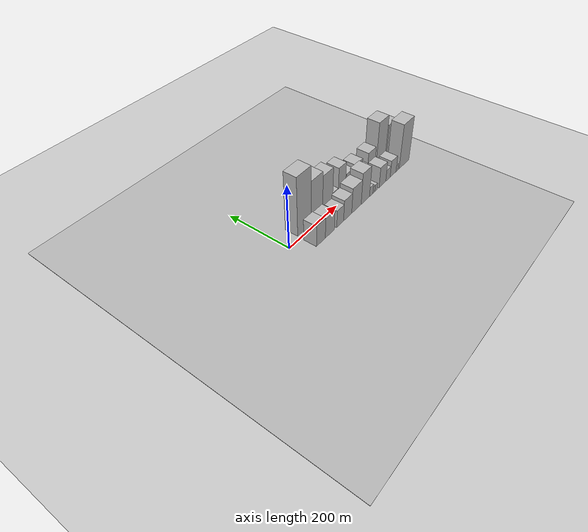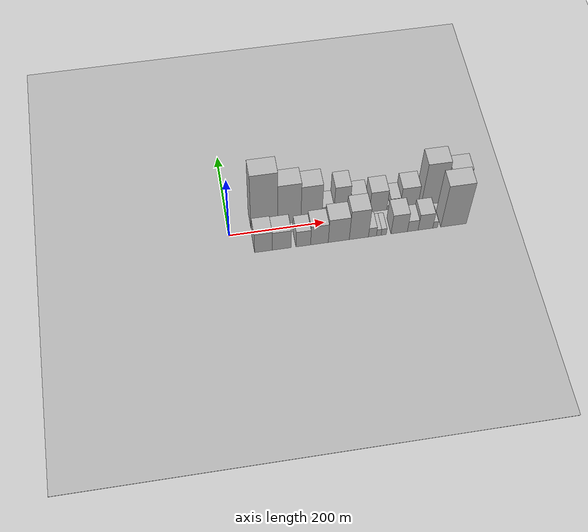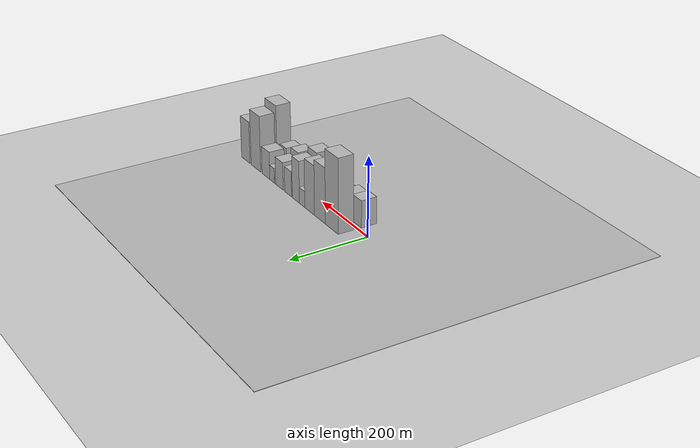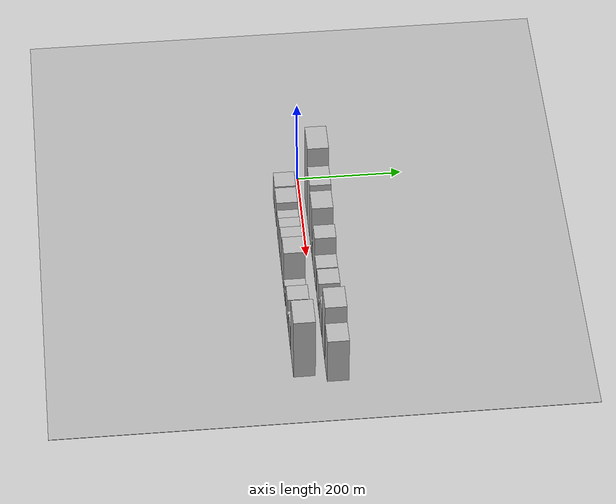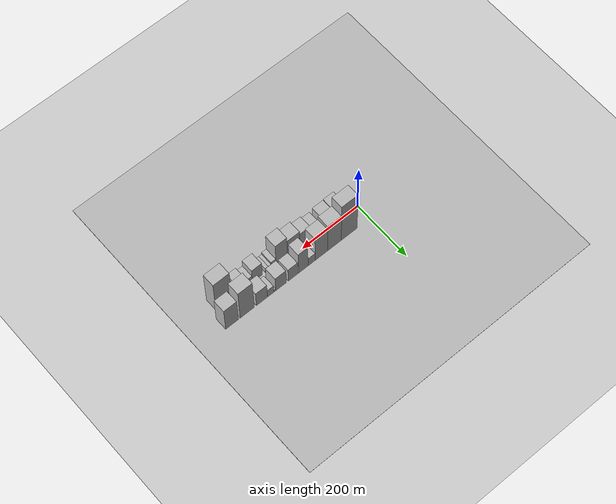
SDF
<?xml version="1.0" encoding="utf-8"?>

<sdf version="1.6">

   <world name="default">

      <gui fullscreen="0">

         <camera name="user_camera">

            <pose>-15 0 4.57585 0 0 0</pose>

            <view_controller>orbit</view_controller>

         </camera>

      </gui>

      <scene>

         <sky>

           <clouds>

             <speed>12</speed>

           </clouds>

         </sky>

         <ambient>0.4 0.4 0.4 1</ambient>

         <background>0.7 0.7 0.7 1</background>

         <shadows>1</shadows>

      </scene>

      <gravity>0 0 -9.8066</gravity>

      <magnetic_field>6e-06 2.3e-05 -4.2e-05</magnetic_field>

      <physics default="0" name="default_physics" type="ode">

         <ode>

            <solver>

               <type>quick</type>

               <iters>10</iters>

               <sor>1.0</sor>

               <use_dynamic_moi_rescaling>0</use_dynamic_moi_rescaling>

            </solver>

            <constraints>

               <cfm>0</cfm>

               <erp>0.2</erp>

               <contact_max_correcting_vel>100</contact_max_correcting_vel>

               <contact_surface_layer>0.001</contact_surface_layer>

            </constraints>

         </ode>

         <max_step_size>0.004</max_step_size>

         <real_time_factor>1</real_time_factor>

         <real_time_update_rate>250</real_time_update_rate>

      </physics>

      <light name="sun" type="directional">

         <cast_shadows>1</cast_shadows>

         <pose>0 0 10 0 0 0</pose>

         <diffuse>0.8 0.8 0.8 1</diffuse>

         <specular>0.2 0.2 0.2 1</specular>

         <attenuation>

            <range>1000</range>

            <constant>0.9</constant>

            <linear>0.01</linear>

            <quadratic>0.001</quadratic>

         </attenuation>

         <direction>-0.5 0.1 -0.9</direction>

      </light>

      <include>

         <name>ground_plane_1</name>

         <uri>model://HANNAS_ground_plane</uri>

         <pose>0 0 0  0 0 0</pose>

      </include>

      <include>

         <name>ground_plane_2</name>

         <uri>model://HANNAS_ground_plane</uri>

         <pose>100 0 0  0 0 0</pose>

      </include>

      <model name="building_1">

         <static>1</static>

         <pose frame="">74.5581 30.0000 0 0.000000 0.000000 1.570796</pose>

         <link name="link">

            <pose frame="">0 0 94.50 0 0 0</pose>

            <collision name="collision">

               <geometry>

                  <box>

                     <size>40.0000 57.1162 189.0000</size>

                  </box>

               </geometry>

               <max_contacts>10</max_contacts>

               <surface>

                  <contact>

                     <ode/>

                  </contact>

                  <bounce/>

                  <friction>

                     <torsional>

                        <ode/>

                     </torsional>

                     <ode/>

                  </friction>

               </surface>

            </collision>

            <visual name="visual">

               <cast_shadows>0</cast_shadows>

               <geometry>

                  <box>

                     <size>40.0000 57.1162 189.0000</size>

                  </box>

               </geometry>

               <material>

                  <script>

                     <uri>model://HANNAS_wall/materials/scripts</uri>

                     <uri>model://HANNAS_wall/materials/textures</uri>

                     <name>vrc/HANNAS_wall</name>

                  </script>

               </material>

            </visual>

            <self_collide>0</self_collide>

            <enable_wind>0</enable_wind>

            <kinematic>0</kinematic>

         </link>

      </model>

      <model name="building_2">

         <static>1</static>

         <pose frame="">127.4692 30.0000 0 0.000000 0.000000 1.570796</pose>

         <link name="link">

            <pose frame="">0 0 70.50 0 0 0</pose>

            <collision name="collision">

               <geometry>

                  <box>

                     <size>40.0000 48.7060 141.0000</size>

                  </box>

               </geometry>

               <max_contacts>10</max_contacts>

               <surface>

                  <contact>

                     <ode/>

                  </contact>

                  <bounce/>

                  <friction>

                     <torsional>

                        <ode/>

                     </torsional>

                     <ode/>

                  </friction>

               </surface>

            </collision>

            <visual name="visual">

               <cast_shadows>0</cast_shadows>

               <geometry>

                  <box>

                     <size>40.0000 48.7060 141.0000</size>

                  </box>

               </geometry>

               <material>

                  <script>

                     <uri>model://HANNAS_wall/materials/scripts</uri>

                     <uri>model://HANNAS_wall/materials/textures</uri>

                     <name>vrc/HANNAS_wall</name>

                  </script>

               </material>

            </visual>

            <self_collide>0</self_collide>

            <enable_wind>0</enable_wind>

            <kinematic>0</kinematic>

         </link>

      </model>

      <model name="building_3">

         <static>1</static>

         <pose frame="">174.1359 30.0000 0 0.000000 0.000000 1.570796</pose>

         <link name="link">

            <pose frame="">0 0 63.00 0 0 0</pose>

            <collision name="collision">

               <geometry>

                  <box>

                     <size>40.0000 44.6274 126.0000</size>

                  </box>

               </geometry>

               <max_contacts>10</max_contacts>

               <surface>

                  <contact>

                     <ode/>

                  </contact>

                  <bounce/>

                  <friction>

                     <torsional>

                        <ode/>

                     </torsional>

                     <ode/>

                  </friction>

               </surface>

            </collision>

            <visual name="visual">

               <cast_shadows>0</cast_shadows>

               <geometry>

                  <box>

                     <size>40.0000 44.6274 126.0000</size>

                  </box>

               </geometry>

               <material>

                  <script>

                     <uri>model://HANNAS_wall/materials/scripts</uri>

                     <uri>model://HANNAS_wall/materials/textures</uri>

                     <name>vrc/HANNAS_wall</name>

                  </script>

               </material>

            </visual>

            <self_collide>0</self_collide>

            <enable_wind>0</enable_wind>

            <kinematic>0</kinematic>

         </link>

      </model>

      <model name="building_4">

         <static>1</static>

         <pose frame="">208.9829 30.0000 0 0.000000 0.000000 1.570796</pose>

         <link name="link">

            <pose frame="">0 0 21.00 0 0 0</pose>

            <collision name="collision">

               <geometry>

                  <box>

                     <size>40.0000 25.0667 42.0000</size>

                  </box>

               </geometry>

               <max_contacts>10</max_contacts>

               <surface>

                  <contact>

                     <ode/>

                  </contact>

                  <bounce/>

                  <friction>

                     <torsional>

                        <ode/>

                     </torsional>

                     <ode/>

                  </friction>

               </surface>

            </collision>

            <visual name="visual">

               <cast_shadows>0</cast_shadows>

               <geometry>

                  <box>

                     <size>40.0000 25.0667 42.0000</size>

                  </box>

               </geometry>

               <material>

                  <script>

                     <uri>model://HANNAS_wall/materials/scripts</uri>

                     <uri>model://HANNAS_wall/materials/textures</uri>

                     <name>vrc/HANNAS_wall</name>

                  </script>

               </material>

            </visual>

            <self_collide>0</self_collide>

            <enable_wind>0</enable_wind>

            <kinematic>0</kinematic>

         </link>

      </model>

      <model name="building_5">

         <static>1</static>

         <pose frame="">238.2963 30.0000 0 0.000000 0.000000 1.570796</pose>

         <link name="link">

            <pose frame="">0 0 54.00 0 0 0</pose>

            <collision name="collision">

               <geometry>

                  <box>

                     <size>40.0000 33.5602 108.0000</size>

                  </box>

               </geometry>

               <max_contacts>10</max_contacts>

               <surface>

                  <contact>

                     <ode/>

                  </contact>

                  <bounce/>

                  <friction>

                     <torsional>

                        <ode/>

                     </torsional>

                     <ode/>

                  </friction>

               </surface>

            </collision>

            <visual name="visual">

               <cast_shadows>0</cast_shadows>

               <geometry>

                  <box>

                     <size>40.0000 33.5602 108.0000</size>

                  </box>

               </geometry>

               <material>

                  <script>

                     <uri>model://HANNAS_wall/materials/scripts</uri>

                     <uri>model://HANNAS_wall/materials/textures</uri>

                     <name>vrc/HANNAS_wall</name>

                  </script>

               </material>

            </visual>

            <self_collide>0</self_collide>

            <enable_wind>0</enable_wind>

            <kinematic>0</kinematic>

         </link>

      </model>

      <model name="building_6">

         <static>1</static>

         <pose frame="">274.7517 30.0000 0 0.000000 0.000000 1.570796</pose>

         <link name="link">

            <pose frame="">0 0 33.00 0 0 0</pose>

            <collision name="collision">

               <geometry>

                  <box>

                     <size>40.0000 33.3506 66.0000</size>

                  </box>

               </geometry>

               <max_contacts>10</max_contacts>

               <surface>

                  <contact>

                     <ode/>

                  </contact>

                  <bounce/>

                  <friction>

                     <torsional>

                        <ode/>

                     </torsional>

                     <ode/>

                  </friction>

               </surface>

            </collision>

            <visual name="visual">

               <cast_shadows>0</cast_shadows>

               <geometry>

                  <box>

                     <size>40.0000 33.3506 66.0000</size>

                  </box>

               </geometry>

               <material>

                  <script>

                     <uri>model://HANNAS_wall/materials/scripts</uri>

                     <uri>model://HANNAS_wall/materials/textures</uri>

                     <name>vrc/HANNAS_wall</name>

                  </script>

               </material>

            </visual>

            <self_collide>0</self_collide>

            <enable_wind>0</enable_wind>

            <kinematic>0</kinematic>

         </link>

      </model>

      <model name="building_7">

         <static>1</static>

         <pose frame="">317.0574 30.0000 0 0.000000 0.000000 1.570796</pose>

         <link name="link">

            <pose frame="">0 0 36.00 0 0 0</pose>

            <collision name="collision">

               <geometry>

                  <box>

                     <size>40.0000 37.2608 72.0000</size>

                  </box>

               </geometry>

               <max_contacts>10</max_contacts>

               <surface>

                  <contact>

                     <ode/>

                  </contact>

                  <bounce/>

                  <friction>

                     <torsional>

                        <ode/>

                     </torsional>

                     <ode/>

                  </friction>

               </surface>

            </collision>

            <visual name="visual">

               <cast_shadows>0</cast_shadows>

               <geometry>

                  <box>

                     <size>40.0000 37.2608 72.0000</size>

                  </box>

               </geometry>

               <material>

                  <script>

                     <uri>model://HANNAS_wall/materials/scripts</uri>

                     <uri>model://HANNAS_wall/materials/textures</uri>

                     <name>vrc/HANNAS_wall</name>

                  </script>

               </material>

            </visual>

            <self_collide>0</self_collide>

            <enable_wind>0</enable_wind>

            <kinematic>0</kinematic>

         </link>

      </model>

      <model name="building_8">

         <static>1</static>

         <pose frame="">338.9426 30.0000 0 0.000000 0.000000 1.570796</pose>

         <link name="link">

            <pose frame="">0 0 7.50 0 0 0</pose>

            <collision name="collision">

               <geometry>

                  <box>

                     <size>40.0000 6.5095 15.0000</size>

                  </box>

               </geometry>

               <max_contacts>10</max_contacts>

               <surface>

                  <contact>

                     <ode/>

                  </contact>

                  <bounce/>

                  <friction>

                     <torsional>

                        <ode/>

                     </torsional>

                     <ode/>

                  </friction>

               </surface>

            </collision>

            <visual name="visual">

               <cast_shadows>0</cast_shadows>

               <geometry>

                  <box>

                     <size>40.0000 6.5095 15.0000</size>

                  </box>

               </geometry>

               <material>

                  <script>

                     <uri>model://HANNAS_wall/materials/scripts</uri>

                     <uri>model://HANNAS_wall/materials/textures</uri>

                     <name>vrc/HANNAS_wall</name>

                  </script>

               </material>

            </visual>

            <self_collide>0</self_collide>

            <enable_wind>0</enable_wind>

            <kinematic>0</kinematic>

         </link>

      </model>

      <model name="building_9">

         <static>1</static>

         <pose frame="">353.2198 30.0000 0 0.000000 0.000000 1.570796</pose>

         <link name="link">

            <pose frame="">0 0 19.50 0 0 0</pose>

            <collision name="collision">

               <geometry>

                  <box>

                     <size>40.0000 22.0450 39.0000</size>

                  </box>

               </geometry>

               <max_contacts>10</max_contacts>

               <surface>

                  <contact>

                     <ode/>

                  </contact>

                  <bounce/>

                  <friction>

                     <torsional>

                        <ode/>

                     </torsional>

                     <ode/>

                  </friction>

               </surface>

            </collision>

            <visual name="visual">

               <cast_shadows>0</cast_shadows>

               <geometry>

                  <box>

                     <size>40.0000 22.0450 39.0000</size>

                  </box>

               </geometry>

               <material>

                  <script>

                     <uri>model://HANNAS_wall/materials/scripts</uri>

                     <uri>model://HANNAS_wall/materials/textures</uri>

                     <name>vrc/HANNAS_wall</name>

                  </script>

               </material>

            </visual>

            <self_collide>0</self_collide>

            <enable_wind>0</enable_wind>

            <kinematic>0</kinematic>

         </link>

      </model>

      <model name="building_10">

         <static>1</static>

         <pose frame="">383.6568 30.0000 0 0.000000 0.000000 1.570796</pose>

         <link name="link">

            <pose frame="">0 0 36.00 0 0 0</pose>

            <collision name="collision">

               <geometry>

                  <box>

                     <size>40.0000 38.8289 72.0000</size>

                  </box>

               </geometry>

               <max_contacts>10</max_contacts>

               <surface>

                  <contact>

                     <ode/>

                  </contact>

                  <bounce/>

                  <friction>

                     <torsional>

                        <ode/>

                     </torsional>

                     <ode/>

                  </friction>

               </surface>

            </collision>

            <visual name="visual">

               <cast_shadows>0</cast_shadows>

               <geometry>

                  <box>

                     <size>40.0000 38.8289 72.0000</size>

                  </box>

               </geometry>

               <material>

                  <script>

                     <uri>model://HANNAS_wall/materials/scripts</uri>

                     <uri>model://HANNAS_wall/materials/textures</uri>

                     <name>vrc/HANNAS_wall</name>

                  </script>

               </material>

            </visual>

            <self_collide>0</self_collide>

            <enable_wind>0</enable_wind>

            <kinematic>0</kinematic>

         </link>

      </model>

      <model name="building_11">

         <static>1</static>

         <pose frame="">434.4700 30.0000 0 0.000000 0.000000 1.570796</pose>

         <link name="link">

            <pose frame="">0 0 73.50 0 0 0</pose>

            <collision name="collision">

               <geometry>

                  <box>

                     <size>40.0000 48.7975 147.0000</size>

                  </box>

               </geometry>

               <max_contacts>10</max_contacts>

               <surface>

                  <contact>

                     <ode/>

                  </contact>

                  <bounce/>

                  <friction>

                     <torsional>

                        <ode/>

                     </torsional>

                     <ode/>

                  </friction>

               </surface>

            </collision>

            <visual name="visual">

               <cast_shadows>0</cast_shadows>

               <geometry>

                  <box>

                     <size>40.0000 48.7975 147.0000</size>

                  </box>

               </geometry>

               <material>

                  <script>

                     <uri>model://HANNAS_wall/materials/scripts</uri>

                     <uri>model://HANNAS_wall/materials/textures</uri>

                     <name>vrc/HANNAS_wall</name>

                  </script>

               </material>

            </visual>

            <self_collide>0</self_collide>

            <enable_wind>0</enable_wind>

            <kinematic>0</kinematic>

         </link>

      </model>

      <model name="building_12">

         <static>1</static>

         <pose frame="">486.7101 30.0000 0 0.000000 0.000000 1.570796</pose>

         <link name="link">

            <pose frame="">0 0 55.50 0 0 0</pose>

            <collision name="collision">

               <geometry>

                  <box>

                     <size>40.0000 43.6827 111.0000</size>

                  </box>

               </geometry>

               <max_contacts>10</max_contacts>

               <surface>

                  <contact>

                     <ode/>

                  </contact>

                  <bounce/>

                  <friction>

                     <torsional>

                        <ode/>

                     </torsional>

                     <ode/>

                  </friction>

               </surface>

            </collision>

            <visual name="visual">

               <cast_shadows>0</cast_shadows>

               <geometry>

                  <box>

                     <size>40.0000 43.6827 111.0000</size>

                  </box>

               </geometry>

               <material>

                  <script>

                     <uri>model://HANNAS_wall/materials/scripts</uri>

                     <uri>model://HANNAS_wall/materials/textures</uri>

                     <name>vrc/HANNAS_wall</name>

                  </script>

               </material>

            </visual>

            <self_collide>0</self_collide>

            <enable_wind>0</enable_wind>

            <kinematic>0</kinematic>

         </link>

      </model>

      <model name="building_13">

         <static>1</static>

         <pose frame="">63.6018 -30.0000 0 0.000000 0.000000 1.570796</pose>

         <link name="link">

            <pose frame="">0 0 34.50 0 0 0</pose>

            <collision name="collision">

               <geometry>

                  <box>

                     <size>40.0000 37.2036 69.0000</size>

                  </box>

               </geometry>

               <max_contacts>10</max_contacts>

               <surface>

                  <contact>

                     <ode/>

                  </contact>

                  <bounce/>

                  <friction>

                     <torsional>

                        <ode/>

                     </torsional>

                     <ode/>

                  </friction>

               </surface>

            </collision>

            <visual name="visual">

               <cast_shadows>0</cast_shadows>

               <geometry>

                  <box>

                     <size>40.0000 37.2036 69.0000</size>

                  </box>

               </geometry>

               <material>

                  <script>

                     <uri>model://HANNAS_wall/materials/scripts</uri>

                     <uri>model://HANNAS_wall/materials/textures</uri>

                     <name>vrc/HANNAS_wall</name>

                  </script>

               </material>

            </visual>

            <self_collide>0</self_collide>

            <enable_wind>0</enable_wind>

            <kinematic>0</kinematic>

         </link>

      </model>

      <model name="building_14">

         <static>1</static>

         <pose frame="">101.7707 -30.0000 0 0.000000 0.000000 1.570796</pose>

         <link name="link">

            <pose frame="">0 0 33.00 0 0 0</pose>

            <collision name="collision">

               <geometry>

                  <box>

                     <size>40.0000 39.1342 66.0000</size>

                  </box>

               </geometry>

               <max_contacts>10</max_contacts>

               <surface>

                  <contact>

                     <ode/>

                  </contact>

                  <bounce/>

                  <friction>

                     <torsional>

                        <ode/>

                     </torsional>

                     <ode/>

                  </friction>

               </surface>

            </collision>

            <visual name="visual">

               <cast_shadows>0</cast_shadows>

               <geometry>

                  <box>

                     <size>40.0000 39.1342 66.0000</size>

                  </box>

               </geometry>

               <material>

                  <script>

                     <uri>model://HANNAS_wall/materials/scripts</uri>

                     <uri>model://HANNAS_wall/materials/textures</uri>

                     <name>vrc/HANNAS_wall</name>

                  </script>

               </material>

            </visual>

            <self_collide>0</self_collide>

            <enable_wind>0</enable_wind>

            <kinematic>0</kinematic>

         </link>

      </model>

      <model name="building_15">

         <static>1</static>

         <pose frame="">146.7385 -30.0000 0 0.000000 0.000000 1.570796</pose>

         <link name="link">

            <pose frame="">0 0 28.50 0 0 0</pose>

            <collision name="collision">

               <geometry>

                  <box>

                     <size>40.0000 30.8015 57.0000</size>

                  </box>

               </geometry>

               <max_contacts>10</max_contacts>

               <surface>

                  <contact>

                     <ode/>

                  </contact>

                  <bounce/>

                  <friction>

                     <torsional>

                        <ode/>

                     </torsional>

                     <ode/>

                  </friction>

               </surface>

            </collision>

            <visual name="visual">

               <cast_shadows>0</cast_shadows>

               <geometry>

                  <box>

                     <size>40.0000 30.8015 57.0000</size>

                  </box>

               </geometry>

               <material>

                  <script>

                     <uri>model://HANNAS_wall/materials/scripts</uri>

                     <uri>model://HANNAS_wall/materials/textures</uri>

                     <name>vrc/HANNAS_wall</name>

                  </script>

               </material>

            </visual>

            <self_collide>0</self_collide>

            <enable_wind>0</enable_wind>

            <kinematic>0</kinematic>

         </link>

      </model>

      <model name="building_16">

         <static>1</static>

         <pose frame="">180.6436 -30.0000 0 0.000000 0.000000 1.570796</pose>

         <link name="link">

            <pose frame="">0 0 34.50 0 0 0</pose>

            <collision name="collision">

               <geometry>

                  <box>

                     <size>40.0000 37.0087 69.0000</size>

                  </box>

               </geometry>

               <max_contacts>10</max_contacts>

               <surface>

                  <contact>

                     <ode/>

                  </contact>

                  <bounce/>

                  <friction>

                     <torsional>

                        <ode/>

                     </torsional>

                     <ode/>

                  </friction>

               </surface>

            </collision>

            <visual name="visual">

               <cast_shadows>0</cast_shadows>

               <geometry>

                  <box>

                     <size>40.0000 37.0087 69.0000</size>

                  </box>

               </geometry>

               <material>

                  <script>

                     <uri>model://HANNAS_wall/materials/scripts</uri>

                     <uri>model://HANNAS_wall/materials/textures</uri>

                     <name>vrc/HANNAS_wall</name>

                  </script>

               </material>

            </visual>

            <self_collide>0</self_collide>

            <enable_wind>0</enable_wind>

            <kinematic>0</kinematic>

         </link>

      </model>

      <model name="building_17">

         <static>1</static>

         <pose frame="">221.3284 -30.0000 0 0.000000 0.000000 1.570796</pose>

         <link name="link">

            <pose frame="">0 0 42.00 0 0 0</pose>

            <collision name="collision">

               <geometry>

                  <box>

                     <size>40.0000 44.3609 84.0000</size>

                  </box>

               </geometry>

               <max_contacts>10</max_contacts>

               <surface>

                  <contact>

                     <ode/>

                  </contact>

                  <bounce/>

                  <friction>

                     <torsional>

                        <ode/>

                     </torsional>

                     <ode/>

                  </friction>

               </surface>

            </collision>

            <visual name="visual">

               <cast_shadows>0</cast_shadows>

               <geometry>

                  <box>

                     <size>40.0000 44.3609 84.0000</size>

                  </box>

               </geometry>

               <material>

                  <script>

                     <uri>model://HANNAS_wall/materials/scripts</uri>

                     <uri>model://HANNAS_wall/materials/textures</uri>

                     <name>vrc/HANNAS_wall</name>

                  </script>

               </material>

            </visual>

            <self_collide>0</self_collide>

            <enable_wind>0</enable_wind>

            <kinematic>0</kinematic>

         </link>

      </model>

      <model name="building_18">

         <static>1</static>

         <pose frame="">263.7964 -30.0000 0 0.000000 0.000000 1.570796</pose>

         <link name="link">

            <pose frame="">0 0 52.50 0 0 0</pose>

            <collision name="collision">

               <geometry>

                  <box>

                     <size>40.0000 40.5752 105.0000</size>

                  </box>

               </geometry>

               <max_contacts>10</max_contacts>

               <surface>

                  <contact>

                     <ode/>

                  </contact>

                  <bounce/>

                  <friction>

                     <torsional>

                        <ode/>

                     </torsional>

                     <ode/>

                  </friction>

               </surface>

            </collision>

            <visual name="visual">

               <cast_shadows>0</cast_shadows>

               <geometry>

                  <box>

                     <size>40.0000 40.5752 105.0000</size>

                  </box>

               </geometry>

               <material>

                  <script>

                     <uri>model://HANNAS_wall/materials/scripts</uri>

                     <uri>model://HANNAS_wall/materials/textures</uri>

                     <name>vrc/HANNAS_wall</name>

                  </script>

               </material>

            </visual>

            <self_collide>0</self_collide>

            <enable_wind>0</enable_wind>

            <kinematic>0</kinematic>

         </link>

      </model>

      <model name="building_19">

         <static>1</static>

         <pose frame="">292.5426 -30.0000 0 0.000000 0.000000 1.570796</pose>

         <link name="link">

            <pose frame="">0 0 16.50 0 0 0</pose>

            <collision name="collision">

               <geometry>

                  <box>

                     <size>40.0000 16.9172 33.0000</size>

                  </box>

               </geometry>

               <max_contacts>10</max_contacts>

               <surface>

                  <contact>

                     <ode/>

                  </contact>

                  <bounce/>

                  <friction>

                     <torsional>

                        <ode/>

                     </torsional>

                     <ode/>

                  </friction>

               </surface>

            </collision>

            <visual name="visual">

               <cast_shadows>0</cast_shadows>

               <geometry>

                  <box>

                     <size>40.0000 16.9172 33.0000</size>

                  </box>

               </geometry>

               <material>

                  <script>

                     <uri>model://HANNAS_wall/materials/scripts</uri>

                     <uri>model://HANNAS_wall/materials/textures</uri>

                     <name>vrc/HANNAS_wall</name>

                  </script>

               </material>

            </visual>

            <self_collide>0</self_collide>

            <enable_wind>0</enable_wind>

            <kinematic>0</kinematic>

         </link>

      </model>

      <model name="building_20">

         <static>1</static>

         <pose frame="">305.8839 -30.0000 0 0.000000 0.000000 1.570796</pose>

         <link name="link">

            <pose frame="">0 0 12.00 0 0 0</pose>

            <collision name="collision">

               <geometry>

                  <box>

                     <size>40.0000 9.7653 24.0000</size>

                  </box>

               </geometry>

               <max_contacts>10</max_contacts>

               <surface>

                  <contact>

                     <ode/>

                  </contact>

                  <bounce/>

                  <friction>

                     <torsional>

                        <ode/>

                     </torsional>

                     <ode/>

                  </friction>

               </surface>

            </collision>

            <visual name="visual">

               <cast_shadows>0</cast_shadows>

               <geometry>

                  <box>

                     <size>40.0000 9.7653 24.0000</size>

                  </box>

               </geometry>

               <material>

                  <script>

                     <uri>model://HANNAS_wall/materials/scripts</uri>

                     <uri>model://HANNAS_wall/materials/textures</uri>

                     <name>vrc/HANNAS_wall</name>

                  </script>

               </material>

            </visual>

            <self_collide>0</self_collide>

            <enable_wind>0</enable_wind>

            <kinematic>0</kinematic>

         </link>

      </model>

      <model name="building_21">

         <static>1</static>

         <pose frame="">316.3816 -30.0000 0 0.000000 0.000000 1.570796</pose>

         <link name="link">

            <pose frame="">0 0 12.00 0 0 0</pose>

            <collision name="collision">

               <geometry>

                  <box>

                     <size>40.0000 11.2301 24.0000</size>

                  </box>

               </geometry>

               <max_contacts>10</max_contacts>

               <surface>

                  <contact>

                     <ode/>

                  </contact>

                  <bounce/>

                  <friction>

                     <torsional>

                        <ode/>

                     </torsional>

                     <ode/>

                  </friction>

               </surface>

            </collision>

            <visual name="visual">

               <cast_shadows>0</cast_shadows>

               <geometry>

                  <box>

                     <size>40.0000 11.2301 24.0000</size>

                  </box>

               </geometry>

               <material>

                  <script>

                     <uri>model://HANNAS_wall/materials/scripts</uri>

                     <uri>model://HANNAS_wall/materials/textures</uri>

                     <name>vrc/HANNAS_wall</name>

                  </script>

               </material>

            </visual>

            <self_collide>0</self_collide>

            <enable_wind>0</enable_wind>

            <kinematic>0</kinematic>

         </link>

      </model>

      <model name="building_22">

         <static>1</static>

         <pose frame="">349.4318 -30.0000 0 0.000000 0.000000 1.570796</pose>

         <link name="link">

            <pose frame="">0 0 34.50 0 0 0</pose>

            <collision name="collision">

               <geometry>

                  <box>

                     <size>40.0000 34.8703 69.0000</size>

                  </box>

               </geometry>

               <max_contacts>10</max_contacts>

               <surface>

                  <contact>

                     <ode/>

                  </contact>

                  <bounce/>

                  <friction>

                     <torsional>

                        <ode/>

                     </torsional>

                     <ode/>

                  </friction>

               </surface>

            </collision>

            <visual name="visual">

               <cast_shadows>0</cast_shadows>

               <geometry>

                  <box>

                     <size>40.0000 34.8703 69.0000</size>

                  </box>

               </geometry>

               <material>

                  <script>

                     <uri>model://HANNAS_wall/materials/scripts</uri>

                     <uri>model://HANNAS_wall/materials/textures</uri>

                     <name>vrc/HANNAS_wall</name>

                  </script>

               </material>

            </visual>

            <self_collide>0</self_collide>

            <enable_wind>0</enable_wind>

            <kinematic>0</kinematic>

         </link>

      </model>

      <model name="building_23">

         <static>1</static>

         <pose frame="">378.2280 -30.0000 0 0.000000 0.000000 1.570796</pose>

         <link name="link">

            <pose frame="">0 0 19.50 0 0 0</pose>

            <collision name="collision">

               <geometry>

                  <box>

                     <size>40.0000 22.7221 39.0000</size>

                  </box>

               </geometry>

               <max_contacts>10</max_contacts>

               <surface>

                  <contact>

                     <ode/>

                  </contact>

                  <bounce/>

                  <friction>

                     <torsional>

                        <ode/>

                     </torsional>

                     <ode/>

                  </friction>

               </surface>

            </collision>

            <visual name="visual">

               <cast_shadows>0</cast_shadows>

               <geometry>

                  <box>

                     <size>40.0000 22.7221 39.0000</size>

                  </box>

               </geometry>

               <material>

                  <script>

                     <uri>model://HANNAS_wall/materials/scripts</uri>

                     <uri>model://HANNAS_wall/materials/textures</uri>

                     <name>vrc/HANNAS_wall</name>

                  </script>

               </material>

            </visual>

            <self_collide>0</self_collide>

            <enable_wind>0</enable_wind>

            <kinematic>0</kinematic>

         </link>

      </model>

      <model name="building_24">

         <static>1</static>

         <pose frame="">405.3217 -30.0000 0 0.000000 0.000000 1.570796</pose>

         <link name="link">

            <pose frame="">0 0 28.50 0 0 0</pose>

            <collision name="collision">

               <geometry>

                  <box>

                     <size>40.0000 31.4653 57.0000</size>

                  </box>

               </geometry>

               <max_contacts>10</max_contacts>

               <surface>

                  <contact>

                     <ode/>

                  </contact>

                  <bounce/>

                  <friction>

                     <torsional>

                        <ode/>

                     </torsional>

                     <ode/>

                  </friction>

               </surface>

            </collision>

            <visual name="visual">

               <cast_shadows>0</cast_shadows>

               <geometry>

                  <box>

                     <size>40.0000 31.4653 57.0000</size>

                  </box>

               </geometry>

               <material>

                  <script>

                     <uri>model://HANNAS_wall/materials/scripts</uri>

                     <uri>model://HANNAS_wall/materials/textures</uri>

                     <name>vrc/HANNAS_wall</name>

                  </script>

               </material>

            </visual>

            <self_collide>0</self_collide>

            <enable_wind>0</enable_wind>

            <kinematic>0</kinematic>

         </link>

      </model>

      <model name="building_25">

         <static>1</static>

         <pose frame="">426.1001 -30.0000 0 0.000000 0.000000 1.570796</pose>

         <link name="link">

            <pose frame="">0 0 12.00 0 0 0</pose>

            <collision name="collision">

               <geometry>

                  <box>

                     <size>40.0000 10.0915 24.0000</size>

                  </box>

               </geometry>

               <max_contacts>10</max_contacts>

               <surface>

                  <contact>

                     <ode/>

                  </contact>

                  <bounce/>

                  <friction>

                     <torsional>

                        <ode/>

                     </torsional>

                     <ode/>

                  </friction>

               </surface>

            </collision>

            <visual name="visual">

               <cast_shadows>0</cast_shadows>

               <geometry>

                  <box>

                     <size>40.0000 10.0915 24.0000</size>

                  </box>

               </geometry>

               <material>

                  <script>

                     <uri>model://HANNAS_wall/materials/scripts</uri>

                     <uri>model://HANNAS_wall/materials/textures</uri>

                     <name>vrc/HANNAS_wall</name>

                  </script>

               </material>

            </visual>

            <self_collide>0</self_collide>

            <enable_wind>0</enable_wind>

            <kinematic>0</kinematic>

         </link>

      </model>

      <model name="building_26">

         <static>1</static>

         <pose frame="">465.5502 -30.0000 0 0.000000 0.000000 1.570796</pose>

         <link name="link">

            <pose frame="">0 0 75.00 0 0 0</pose>

            <collision name="collision">

               <geometry>

                  <box>

                     <size>40.0000 54.8088 150.0000</size>

                  </box>

               </geometry>

               <max_contacts>10</max_contacts>

               <surface>

                  <contact>

                     <ode/>

                  </contact>

                  <bounce/>

                  <friction>

                     <torsional>

                        <ode/>

                     </torsional>

                     <ode/>

                  </friction>

               </surface>

            </collision>

            <visual name="visual">

               <cast_shadows>0</cast_shadows>

               <geometry>

                  <box>

                     <size>40.0000 54.8088 150.0000</size>

                  </box>

               </geometry>

               <material>

                  <script>

                     <uri>model://HANNAS_wall/materials/scripts</uri>

                     <uri>model://HANNAS_wall/materials/textures</uri>

                     <name>vrc/HANNAS_wall</name>

                  </script>

               </material>

            </visual>

            <self_collide>0</self_collide>

            <enable_wind>0</enable_wind>

            <kinematic>0</kinematic>

         </link>

      </model>

   </world>

</sdf>

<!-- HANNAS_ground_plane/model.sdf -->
<sdf version="1.4">
<model name="HANNAS_ground_plane">
  <static>true</static>
    <link name="link">
      <collision name="collision">
        <geometry>
          <plane>
            <normal>0 0 1</normal>
            <size>1000 1000</size>
          </plane>
        </geometry>
        <surface>
          <friction>
            <ode>
              <mu>100</mu>
              <mu2>50</mu2>
            </ode>
          </friction>
        </surface>
      </collision>
      <visual name="visual">
        <cast_shadows>false</cast_shadows>
        <geometry>
          <plane>
            <normal>0 0 1</normal>
            <size>1000 1000</size>
          </plane>
        </geometry>
        <material>
          <script>
            <uri>model://HANNAS_ground_plane/materials/scripts/HANNAS_ground_plane.material</uri>
	    <uri>model://HANNAS_ground_plane/materials/textures</uri>
            <name>HANNASGroundPlane/Image</name>
          </script>
        </material>
      </visual>
    </link>
  </model>
</sdf>
